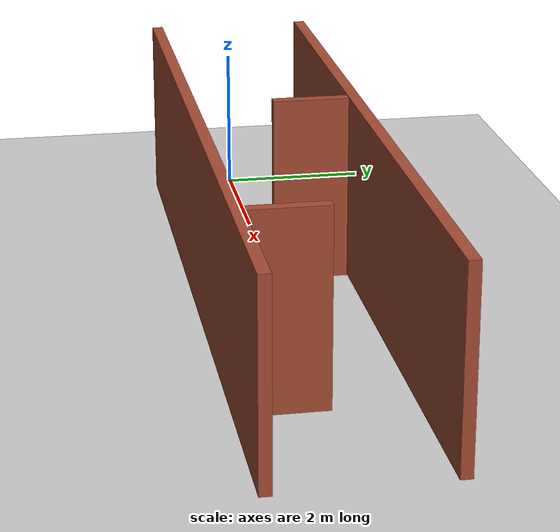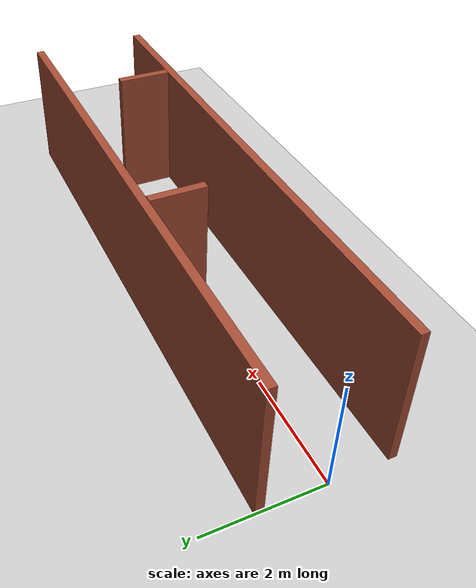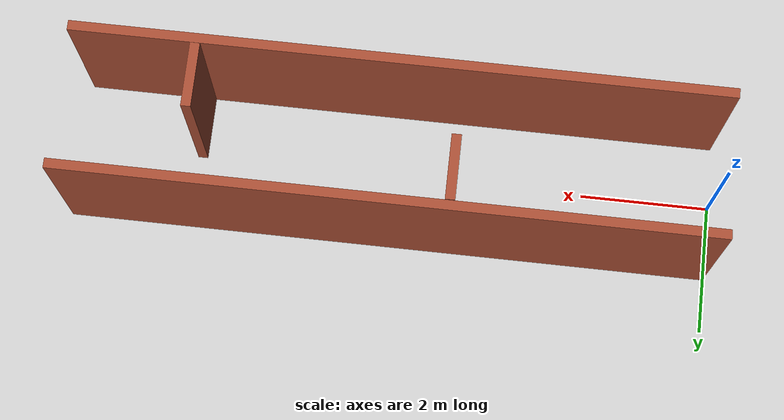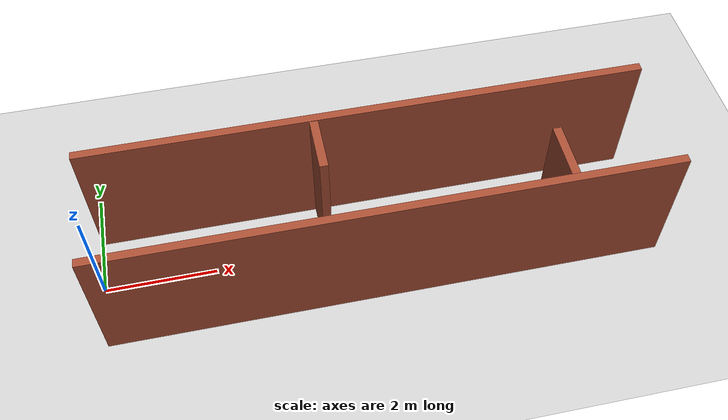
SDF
<sdf version="1.7">
 <world name="default">
  <light name="sun" type="directional">
   <pose>0 0 10 0 -0 0</pose>
   <diffuse>0.8 0.8 0.8 1</diffuse>
   <specular>0.2 0.2 0.2 1</specular>
   <attenuation>
    <range>1000</range>
    <constant>0.9</constant>
    <linear>0.01</linear>
    <quadratic>0.001</quadratic>
   </attenuation>
   <direction>-0.5 0.1 -0.9</direction>
   <spot><inner_angle>0</inner_angle><outer_angle>0</outer_angle><falloff>0</falloff></spot>
  </light>
  <model name="ground_plane">
   <static>1</static>
   <link name="link">
    <collision name="collision">
     <geometry><plane><normal>0 0 1</normal><size>100 100</size></plane></geometry>
     <surface>
      <contact><collide_bitmask>65535</collide_bitmask></contact>
      <friction><ode><mu>100</mu><mu2>50</mu2></ode></friction>
     </surface>
    </collision>
    <visual name="visual">
     <cast_shadows>0</cast_shadows>
     <geometry><plane><normal>0 0 1</normal><size>100 100</size></plane></geometry>
     <material>
      <script><uri>file://media/materials/scripts/gazebo.material</uri><name>Gazebo/Grey</name></script>
     </material>
    </visual>
   </link>
  </model>
  <gravity>0 0 -9.8</gravity>
  <magnetic_field>6e-06 2.3e-05 -4.2e-05</magnetic_field>
  <atmosphere type="adiabatic"/>
  <physics type="ode">
   <max_step_size>0.001</max_step_size>
   <real_time_factor>1</real_time_factor>
   <real_time_update_rate>1000</real_time_update_rate>
  </physics>
  <scene><ambient>0.4 0.4 0.4 1</ambient><background>0.7 0.7 0.7 1</background><shadows>1</shadows></scene>
  <spherical_coordinates>
   <surface_model>EARTH_WGS84</surface_model>
   <latitude_deg>0</latitude_deg>
   <longitude_deg>0</longitude_deg>
   <elevation>0</elevation>
   <heading_deg>0</heading_deg>
  </spherical_coordinates>
  <model name="o11">
   <pose>3.7 1.44 0 0 -0 1.57</pose>
   <link name="Wall_0">
    <collision name="Wall_0_Collision">
     <geometry><box><size>1 0.15 2.5</size></box></geometry>
     <pose>0 0 1.25 0 -0 0</pose>
    </collision>
    <visual name="Wall_0_Visual">
     <pose>0 0 1.25 0 -0 0</pose>
     <geometry><box><size>1 0.15 2.5</size></box></geometry>
     <material>
      <script><uri>file://media/materials/scripts/gazebo.material</uri><name>Gazebo/Bricks</name></script>
      <ambient>1 1 1 1</ambient>
     </material>
     <meta><layer>0</layer></meta>
    </visual>
    <pose>-0.9375 -0.3775 0 0 -0 0</pose>
   </link>
   <static>1</static>
  </model>
  <model name="o11_clone">
   <pose>7.7 0.44 0 0 -0 1.57</pose>
   <link name="Wall_0">
    <collision name="Wall_0_Collision">
     <geometry><box><size>1 0.15 2.5</size></box></geometry>
     <pose>0 0 1.25 0 -0 0</pose>
    </collision>
    <visual name="Wall_0_Visual">
     <pose>0 0 1.25 0 -0 0</pose>
     <geometry><box><size>1 0.15 2.5</size></box></geometry>
     <material>
      <script><uri>file://media/materials/scripts/gazebo.material</uri><name>Gazebo/Bricks</name></script>
      <ambient>1 1 1 1</ambient>
     </material>
     <meta><layer>0</layer></meta>
    </visual>
    <pose>-0.9375 -0.3775 0 0 -0 0</pose>
   </link>
   <static>1</static>
  </model>
  <model name="wall_1">
   <pose>5 1.93 0 0 -0 0</pose>
   <link name="Wall_3">
    <collision name="Wall_3_Collision">
     <geometry><box><size>10 0.15 2.5</size></box></geometry>
     <pose>0 0 1.25 0 -0 0</pose>
    </collision>
    <visual name="Wall_3_Visual">
     <pose>0 0 1.25 0 -0 0</pose>
     <geometry><box><size>10 0.15 2.5</size></box></geometry>
     <material>
      <script><uri>file://media/materials/scripts/gazebo.material</uri><name>Gazebo/Bricks</name></script>
      <ambient>1 1 1 1</ambient>
     </material>
     <meta><layer>0</layer></meta>
    </visual>
    <pose>0 -0.8435 0 0 -0 0</pose>
   </link>
   <static>1</static>
  </model>
  <model name="wall_1_clone">
   <pose>5 -0.23 0 0 -0 0</pose>
   <link name="Wall_3">
    <collision name="Wall_3_Collision">
     <geometry><box><size>10 0.15 2.5</size></box></geometry>
     <pose>0 0 1.25 0 -0 0</pose>
    </collision>
    <visual name="Wall_3_Visual">
     <pose>0 0 1.25 0 -0 0</pose>
     <geometry><box><size>10 0.15 2.5</size></box></geometry>
     <material>
      <script><uri>file://media/materials/scripts/gazebo.material</uri><name>Gazebo/Bricks</name></script>
      <ambient>1 1 1 1</ambient>
     </material>
     <meta><layer>0</layer></meta>
    </visual>
    <pose>0 -0.8435 0 0 -0 0</pose>
   </link>
   <static>1</static>
  </model>
 </world>
</sdf>
